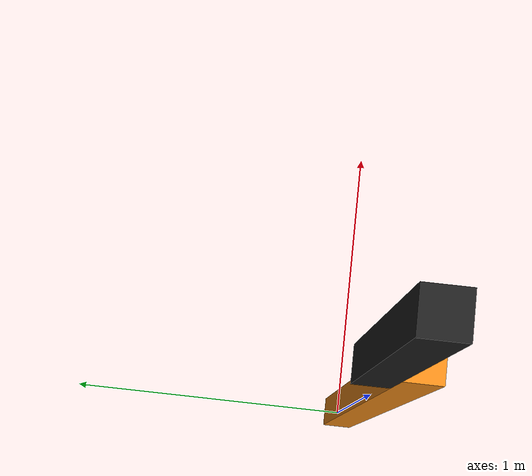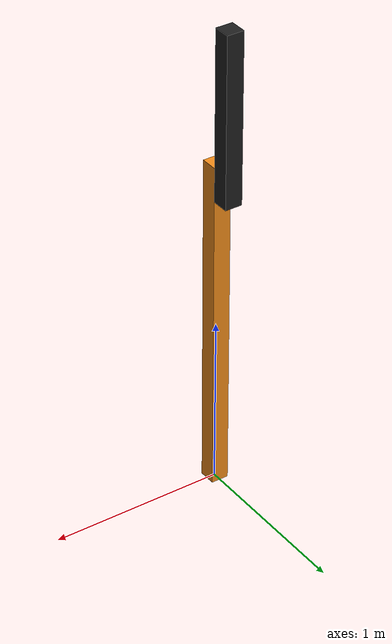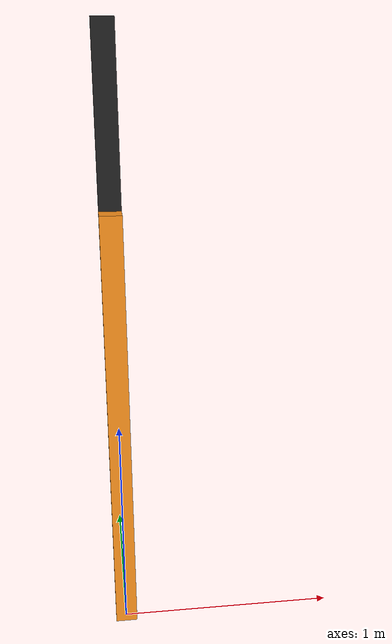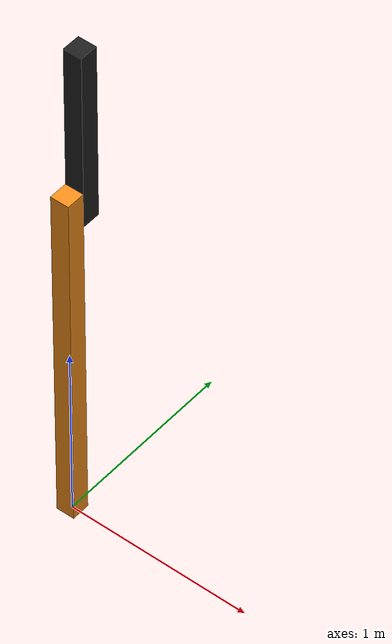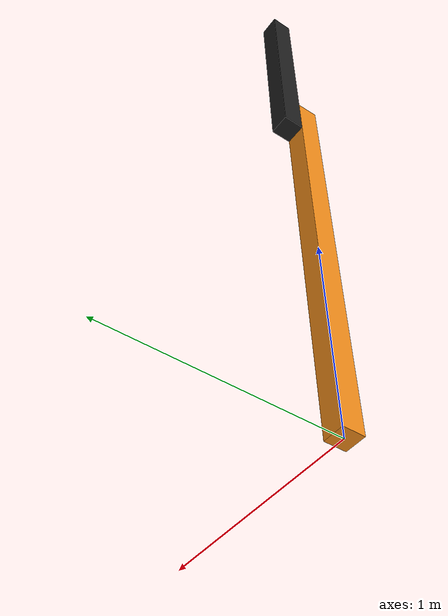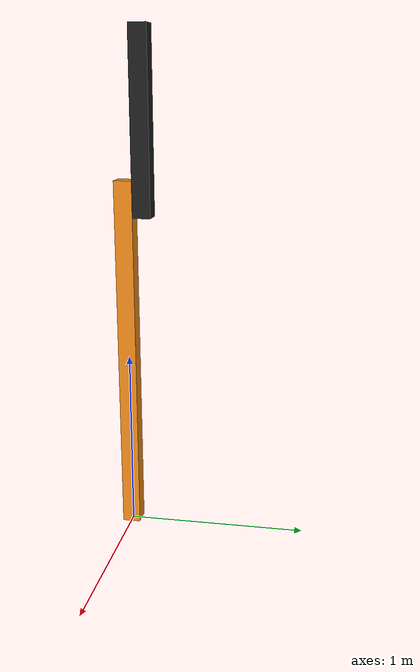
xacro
<?xml version="1.0"?>
<robot name="rotor" xmlns:xacro="http://www.ros.org/wiki/xacro">

<!-- define constants -->
<xacro:property name="PI" value="3.1415926" />
<xacro:property name="mass" value="1" /> <!-- kg -->
<xacro:property name="width" value="0.1" />
<xacro:property name="height1" value="2" />
<xacro:property name="height2" value="1" />

<!-- define links -->
<link name="world" />

<!-- Base Link-->
<link name="base_link">
  <collision>
    <geometry>
      <box size="${width} ${width} ${height1}" />
    </geometry>
    <origin xyz="0 0 ${height1/2}" rpy="0 0 0" />
  </collision>

  <visual>
    <geometry>
      <box size="${width} ${width} ${height1}" />
    </geometry>
    <origin xyz="0 0 ${height1/2}" rpy="0 0 0" />
  </visual>

  <inertial>
    <mass value="${mass}" />
    <inertia
	  ixx="${mass / 12.0 * (width*width + height1*height1)}" ixy="0.0" ixz="0.0"
	  iyy="${mass / 12.0 * (height1*height1 + width*width)}" iyz="0.0"
	  izz="${mass / 12.0 * (width*width + width*width)}"/>
  </inertial>
</link>

<gazebo reference="base_link">
  <material>Gazebo/Orange</material>
</gazebo>

<joint name="ground_joint" type="fixed">  <!-- fix to the ground -->
  <parent link="world" />
  <child link="base_link" />
</joint>

<!-- Link 2 -->
<link name="link2">
  <collision>
    <geometry>
      <box size="${width} ${width} ${height2}" />
    </geometry>
    <origin xyz="0 0 ${height2/2}" rpy="0 0 0" />
  </collision>

  <visual>
    <geometry>
      <box size="${width} ${width} ${height2}" />
    </geometry>
    <origin xyz="0 0 ${height2/2}" rpy="0 0 0" />
  </visual>

  <inertial>
    <mass value="${mass/2}" />
    <inertia
	  ixx="${mass / 12.0 * (width*width + height2*height2)}" ixy="0.0" ixz="0.0"
	  iyy="${mass / 12.0 * (height2*height2 + width*width)}" iyz="0.0"
	  izz="${mass / 12.0 * (width*width + width*width)}"/>
  </inertial>
</link>

<gazebo reference="link2">
  <material>Gazebo/Black</material>
</gazebo>

<joint name="joint1" type="continuous">
  <parent link="base_link" />
  <child link="link2" />
  <origin xyz="0 ${width} ${height1*9/10}" rpy="0 0 0" />
  <axis xyz="0 1 0" />
</joint>

<transmission name="tran1">
  <type>transmission_interface/SimpleTransmission</type>
  <joint name="joint1">
    <hardwareInterface>hardware_interface/EffortJointInterface</hardwareInterface>
  </joint>
  <actuator name="motor1">
    <hardwareInterface>hardware_interface/EffortJointInterface</hardwareInterface>
    <mechanicalReduction>1</mechanicalReduction>
  </actuator>
</transmission>

<!-- ros_control plugin -->
 <gazebo>
   <plugin name="gazebo_ros_control" filename="libgazebo_ros_control.so">
     <robotNamespace>/rotor</robotNamespace>
     <robotSimType>gazebo_ros_control/DefaultRobotHWSim</robotSimType>
     <legacyModeNS>true</legacyModeNS>  <!-- KC_DBG : to avoid gazebo version warring-->
   </plugin>
 </gazebo>

</robot>
